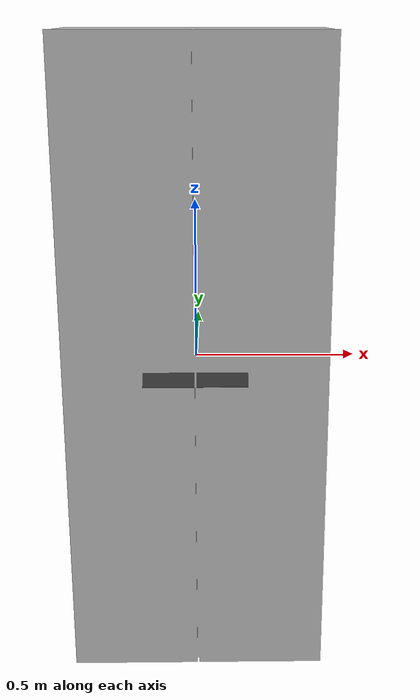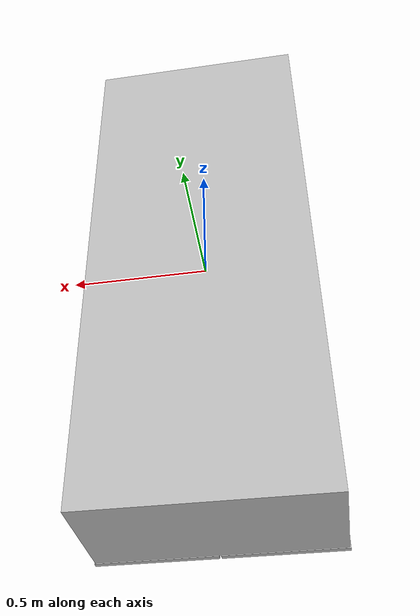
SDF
<?xml version='1.0'?>
<sdf version='1.5'>
    <model name="402_simple_bookcase">
        <pose>0 0 0 0 0 0</pose>
        <static>false</static>
        <link name='model_body'>
            <visual name="visual">
                <geometry>
                    <mesh>
                        <uri>model://rs_gazebo/meshes/ss_hq4/402_simple_bookcase/402_simple_bookcase_visual.dae</uri>
                        <scale>1 1 1</scale>
                    </mesh>
                </geometry>
            </visual>

            <collision name="collision">
                <geometry>
                    <box>
                        <size> 0.8 0.4 2 </size>
                    </box>
                </geometry>
            </collision>

            <inertial>
                <pose> 0 0 0 0 0 0</pose>
                <inertia>
                    <ixx>6.93333333333</ixx>
                    <ixy>0</ixy>
                    <ixz>0</ixz>
                    <iyy>7.73333333333</iyy>
                    <iyz>0</iyz>
                    <izz>1.33333333333</izz>
                </inertia>
                <mass>20.0</mass>
            </inertial>
        </link>
    </model>
</sdf>
